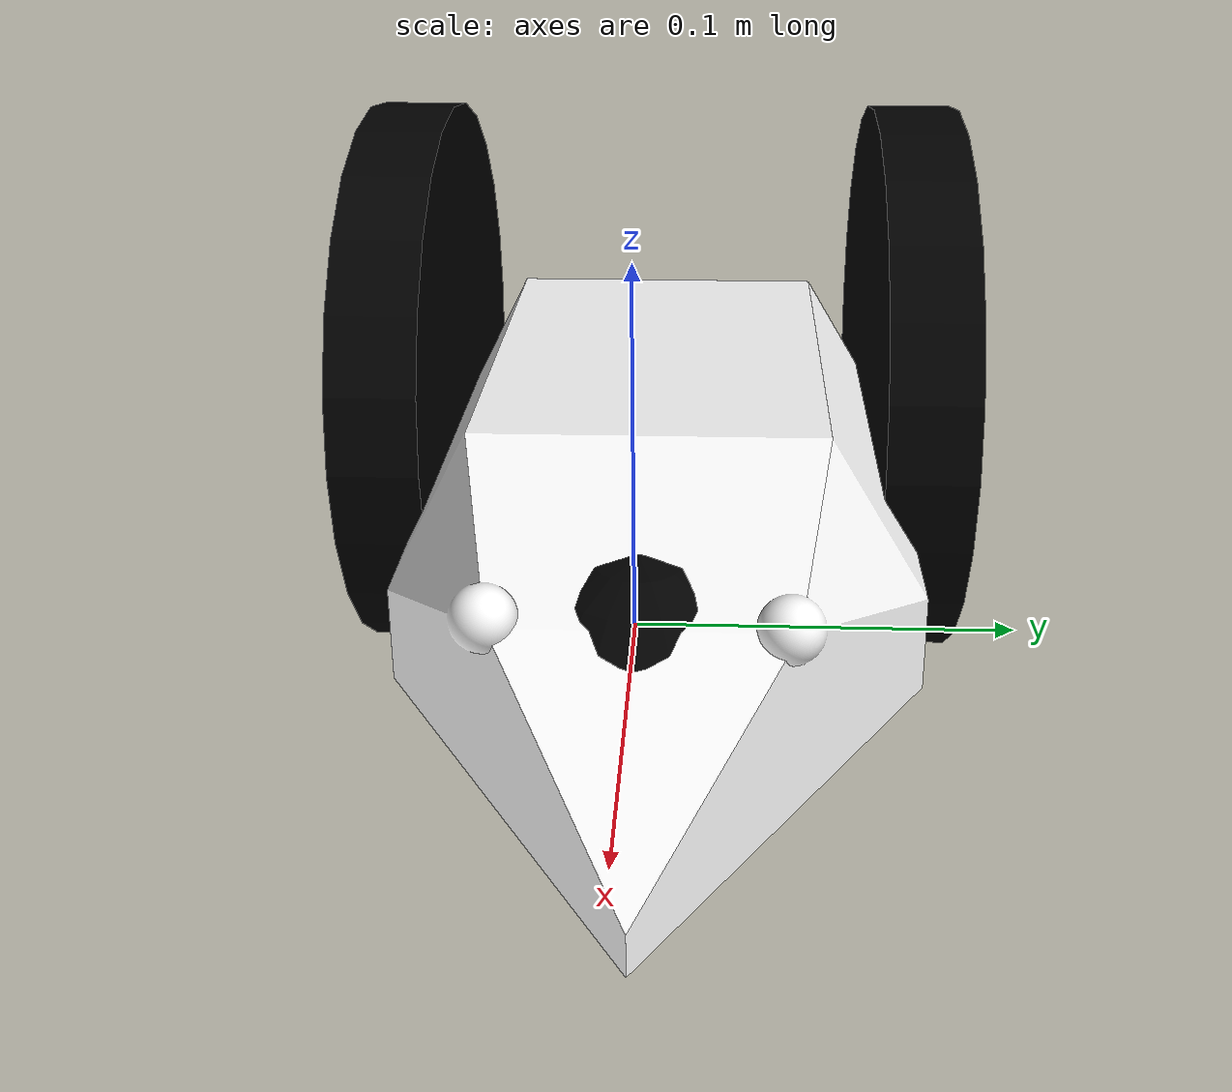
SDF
<?xml version="1.0" ?>
<sdf version="1.8">
    <model name='generic_robot' canonical_link='chassis'>
        <!--chassis-->
        <link name="chassis">
        <pose>0 0 0 0 0 1.57</pose>

        <!-- Visual Geometry -->
        <visual name="act_visual">
            <geometry>
            <mesh>
                <uri>model://mouse_robot/mouse_robot.stl</uri>
                <scale>0.015 0.015 0.015</scale>
            </mesh>
            </geometry>
            <material>
                <ambient>1 1 1 1</ambient>
                <diffuse>1 1 1 1</diffuse>
                <specular>0.8 0.8 0.8 1</specular>
            </material>
        </visual>

        <!-- Collision Geometry -->
        <collision name="chassis_collision">
            <geometry>
            <box>
                <size>0.4 0.2 0.1</size>
            </box>
            </geometry>
        </collision>

        <!-- Inertial Properties -->
        <inertial>
            <mass>1.5</mass>
            <inertia>
            <ixx>0.095</ixx>
            <iyy>0.381</iyy>
            <izz>0.476</izz>
            </inertia>
        </inertial>
        </link>

        <!-- Left wheel-->
        <link name='left_wheel'>
            <pose relative_to="chassis">0.09 0.19 0 -1.5707 0 1.57</pose>
            <inertial>
                <mass>1</mass>
                <inertia>
                    <ixx>0.043333</ixx>
                    <ixy>0</ixy>
                    <ixz>0</ixz>
                    <iyy>0.043333</iyy>
                    <iyz>0</iyz>
                    <izz>0.08</izz>
                </inertia>
            </inertial>
            <visual name='visual'>
                <geometry>
                    <cylinder>
                        <radius>0.1</radius>
                        <length>0.03</length>
                    </cylinder>
                </geometry>
                <material>
                    <ambient>0 0 0 1</ambient>
                    <diffuse>0 0 0 1</diffuse>
                    <specular>0.1 0.1 0.1 1</specular>
                </material>
            </visual>
            <collision name='collision'>
                <geometry>
                    <cylinder>
                        <radius>0.1</radius>
                        <length>0.03</length>
                    </cylinder>
                </geometry>
            </collision>
        </link>

        <!--The same as left wheel but with different position-->
        <link name='right_wheel'>
            <pose relative_to="chassis">-0.09 0.19 0 -1.5707 0 1.57</pose>
            <inertial>
                <mass>1</mass>
                <inertia>
                    <ixx>0.043333</ixx>
                    <ixy>0</ixy>
                    <ixz>0</ixz>
                    <iyy>0.043333</iyy>
                    <iyz>0</iyz>
                    <izz>0.08</izz>
                </inertia>
            </inertial>
            <visual name='visual'>
                <geometry>
                    <cylinder>
                        <radius>0.1</radius>
                        <length>0.03</length>
                    </cylinder>
                </geometry>
                <material>
                    <ambient>0 0 0 1</ambient>
                    <diffuse>0 0 0 1</diffuse>
                    <specular>0.1 0.1 0.1 1</specular>
                </material>
            </visual>
            <collision name='collision'>
                <geometry>
                    <cylinder>
                        <radius>0.1</radius>
                        <length>0.03</length>
                    </cylinder>
                </geometry>
            </collision>
        </link>

        <frame name="caster_frame" attached_to='chassis'>
            <pose relative_to="chassis">0 0.02 -0.03 0 0 0</pose>
        </frame>

        <link name='caster'>
            <pose relative_to='caster_frame'>0 0 0 0 0 0</pose>
            <inertial>
                <mass>1</mass>
                <inertia>
                    <ixx>0.016</ixx>
                    <ixy>0</ixy>
                    <ixz>0</ixz>
                    <iyy>0.016</iyy>
                    <iyz>0</iyz>
                    <izz>0.016</izz>
                </inertia>
            </inertial>
            <visual name='visual'>
                <geometry>
                    <sphere>
                        <radius>0.04</radius>
                    </sphere>
                </geometry>
                <material>
                    <ambient>0 0 0 1</ambient>
                    <diffuse>0 0 0 1</diffuse>
                    <specular>0.1 0.1 0.1 1</specular>
                </material>
            </visual>
            <collision name='collision'>
                <geometry>
                    <sphere>
                        <radius>0.04</radius>
                    </sphere>
                </geometry>
            </collision>
        </link>

        <!--left wheel joint-->
        <joint name='left_wheel_joint' type='revolute'>
            <pose relative_to='left_wheel'/>
            <parent>chassis</parent>
            <child>left_wheel</child>
            <axis>
                <xyz expressed_in='__model__'>0 1 0</xyz> <!--can be descired to any frame or even arbitrary frames-->
                <limit>
                    <lower>-1.79769e+308</lower>    <!--negative infinity-->
                    <upper>1.79769e+308</upper>     <!--positive infinity-->
                </limit>
            </axis>
        </joint>

        <!--right wheel joint-->
        <joint name='right_wheel_joint' type='revolute'>
            <pose relative_to='right_wheel'/>
            <parent>chassis</parent>
            <child>right_wheel</child>
            <axis>
                <xyz expressed_in='__model__'>0 1 0</xyz>
                <limit>
                    <lower>-1.79769e+308</lower>    <!--negative infinity-->
                    <upper>1.79769e+308</upper>     <!--positive infinity-->
                </limit>
            </axis>
        </joint>

        <!--caster wheel joint--> <!--pose defult value is the child-->
        <joint name='caster_wheel' type='ball'>
            <parent>chassis</parent>
            <child>caster</child>
        </joint>

        <plugin
            filename="gz-sim-diff-drive-system"
            name="gz::sim::systems::DiffDrive">
            <left_joint>left_wheel_joint</left_joint>
            <right_joint>right_wheel_joint</right_joint>
            <wheel_separation>0.18</wheel_separation>
            <wheel_radius>0.1</wheel_radius>
            <odom_publish_frequency>10</odom_publish_frequency>
            <topic>cmd_vel</topic>
        </plugin>
        <!-- Moving Based on Key Press (WASD)-->
        <plugin filename="gz-sim-triggered-publisher-system"
                name="gz::sim::systems::TriggeredPublisher">
            <input type="gz.msgs.Int32" topic="/keyboard/keypress">
                <match field="data">87</match>
            </input>
            <output type="gz.msgs.Twist" topic="/cmd_vel">
                linear: {x: 0.5}, angular: {z: 0.0}
            </output>
        </plugin>
        <plugin filename="gz-sim-triggered-publisher-system"
                name="gz::sim::systems::TriggeredPublisher">
            <input type="gz.msgs.Int32" topic="/keyboard/keypress">
                <match field="data">83</match>
            </input>
            <output type="gz.msgs.Twist" topic="/cmd_vel">
                linear: {x: -0.5}, angular: {z: 0.0}
            </output>
        </plugin>
        <plugin filename="gz-sim-triggered-publisher-system"
                name="gz::sim::systems::TriggeredPublisher">
            <input type="gz.msgs.Int32" topic="/keyboard/keypress">
                <match field="data">65</match>
            </input>
            <output type="gz.msgs.Twist" topic="/cmd_vel">
                linear: {x: 0.0}, angular: {z: 0.5}
            </output>
        </plugin>
        <plugin filename="gz-sim-triggered-publisher-system"
                name="gz::sim::systems::TriggeredPublisher">
            <input type="gz.msgs.Int32" topic="/keyboard/keypress">
                <match field="data">68</match>
            </input>
            <output type="gz.msgs.Twist" topic="/cmd_vel">
                linear: {x: 0.0}, angular: {z: -0.5}
            </output>
        </plugin>
    </model>
</sdf>
